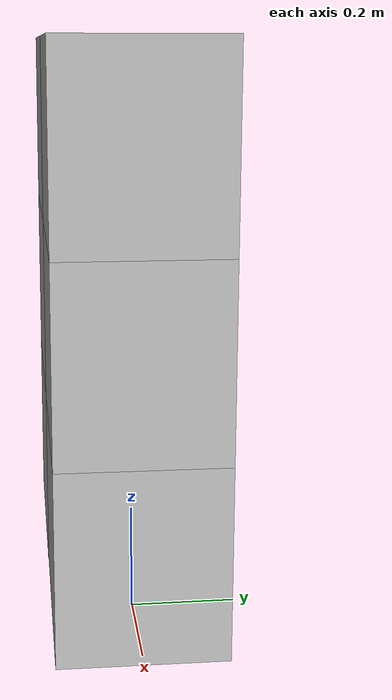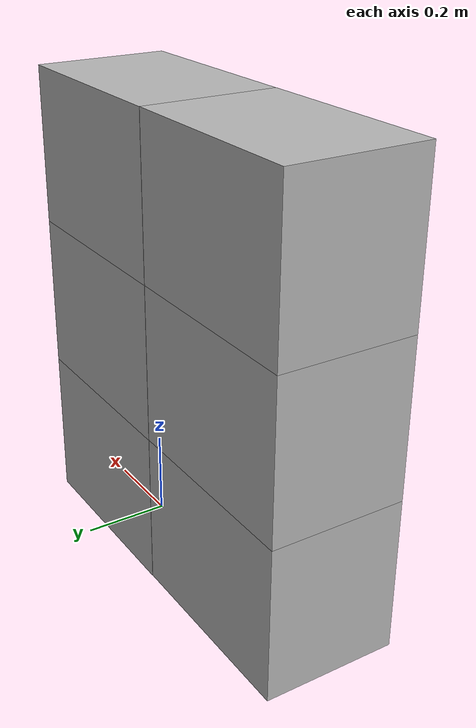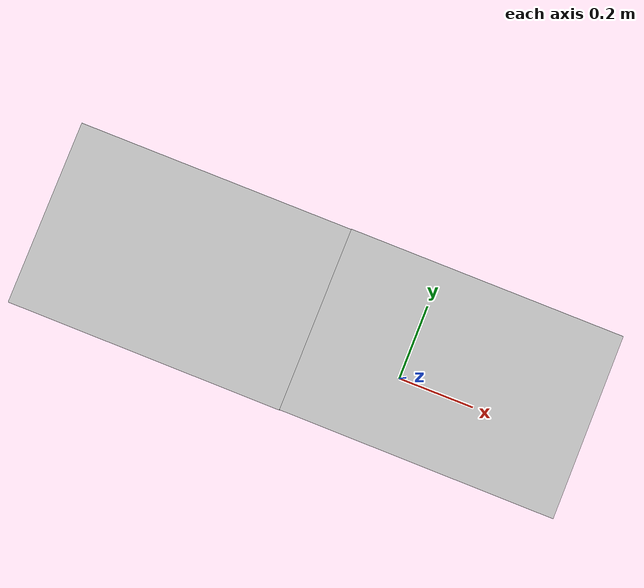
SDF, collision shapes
<?xml version='1_0'?>
<sdf version="1.5">
  <model name="2_stacks">
    <pose>0 0 0 0 0 1.57079633</pose>
    <static>true</static>
    <!-- 1st row -->
    <link name="link_0">
      <collision name="collision_0">
        <pose>0 0 0.18 0 0 3.14</pose>
        <geometry>
          <box>
            <size>0.31 0.465 0.36</size>
          </box>
        </geometry>
      </collision>
      <visual name='visual_0'>
        <pose>0 0 0.18 0 0 3.14</pose>
        <geometry>
            <mesh>
              <uri>model://2_stacks/meshes/exact_blue_circle_border.dae</uri>
            </mesh>
        </geometry>
      </visual>
    </link>

    <link name="link_1">
      <collision name="collision_1">
        <pose>0 0 0.54 0 0 3.14</pose>
        <geometry>
          <box>
            <size>0.31 0.465 0.36</size>
          </box>
        </geometry>
      </collision>
      <visual name='visual_1'>
        <pose>0 0 0.54 0 0 3.14</pose>
        <geometry>
            <mesh>
              <uri>model://2_stacks/meshes/exact_red_circle_border.dae</uri>
            </mesh>
        </geometry>
      </visual>
    </link>

    <link name="link_2">
      <collision name="collision_2">
        <pose>0 0 0.9 0 0 3.14</pose>
        <geometry>
          <box>
            <size>0.31 0.465 0.36</size>
          </box>
        </geometry>
      </collision>
      <visual name='visual_2'>
        <pose>0 0 0.9 0 0 3.14</pose>
        <geometry>
            <mesh>
              <uri>model://2_stacks/meshes/exact_green_circle_border.dae</uri>
            </mesh>
        </geometry>
      </visual>
    </link>

    <link name="link_3">
      <collision name="collision_3">
        <pose>0 0.465 0.18 0 0 3.14</pose>
        <geometry>
          <box>
            <size>0.31 0.465 0.36</size>
          </box>
        </geometry>
      </collision>
      <visual name='visual_3'>
        <pose>0 0.465 0.18 0 0 3.14</pose>
        <geometry>
            <mesh>
              <uri>model://2_stacks/meshes/exact_blue_circle_border.dae</uri>
            </mesh>
        </geometry>
      </visual>
    </link>
    <gazebo reference="my_box">
      <material>Gazebo/Blue</material>
    </gazebo>

    <link name="link_4">
      <collision name="collision_4">
        <pose>0 0.465 0.54 0 0 3.14</pose>
        <geometry>
          <box>
            <size>0.31 0.465 0.36</size>
          </box>
        </geometry>
      </collision>
      <visual name='visual_4'>
        <pose>0 0.465 0.54 0 0 3.14</pose>
        <geometry>
            <mesh>
              <uri>model://2_stacks/meshes/exact_red_circle_border.dae</uri>
            </mesh>
        </geometry>
      </visual>
    </link>

    <link name="link_5">
      <collision name="collision_5">
        <pose>0 0.465 0.9 0 0 3.14</pose>
        <geometry>
          <box>
            <size>0.31 0.465 0.36</size>
          </box>
        </geometry>
      </collision>
      <visual name='visual_5'>
        <pose>0 0.465 0.9 0 0 3.14</pose>
        <geometry>
            <mesh>
              <uri>model://2_stacks/meshes/exact_green_circle_border.dae</uri>
            </mesh>
        </geometry>
      </visual>
    </link>

  </model>
</sdf>
